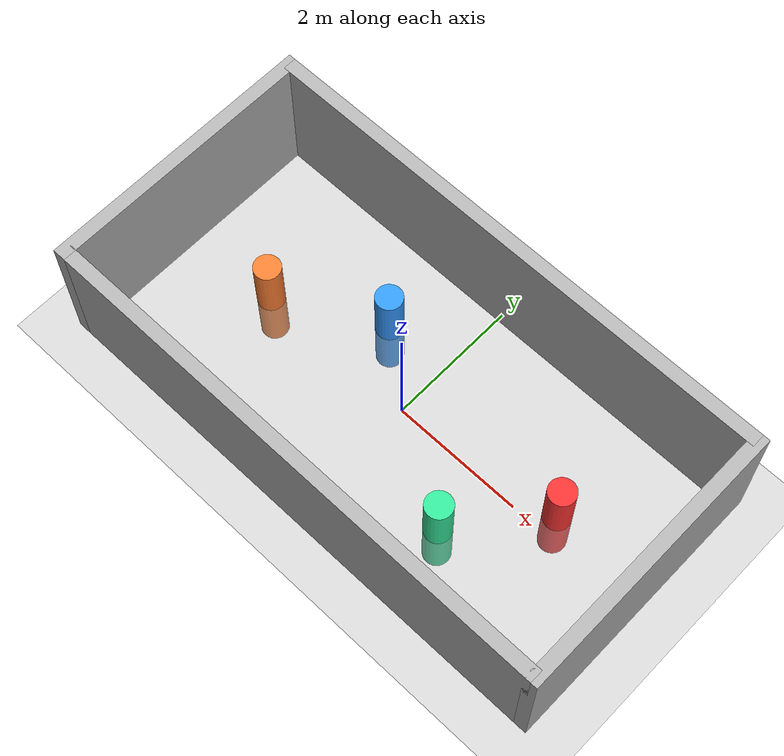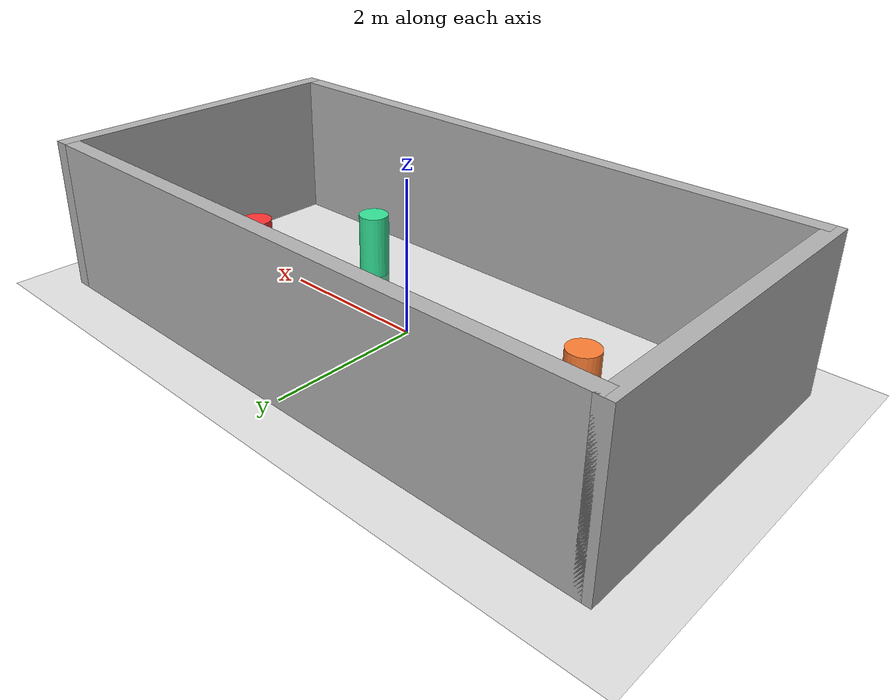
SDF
<?xml version="1.0" ?>
<sdf version="1.6">
  <world name="indoor_with_humans">
    <light name="sun" type="directional">
      <pose>0 0 10 0 0 0</pose>
      <diffuse>1 1 1 1</diffuse>
      <specular>0.2 0.2 0.2 1</specular>
      <direction>-0.5 0.1 -1</direction>
    </light>

    <model name="ground_plane">
      <static>true</static>
      <link name="link">
        <collision name="collision">
          <geometry>
            <plane>
              <normal>0 0 1</normal>
              <size>50 50</size>
            </plane>
          </geometry>
        </collision>
        <visual name="visual">
          <geometry>
            <plane>
              <normal>0 0 1</normal>
              <size>50 50</size>
            </plane>
          </geometry>
          <material>
            <ambient>0.6 0.6 0.6 1</ambient>
          </material>
        </visual>
      </link>
    </model>

    <physics type="ode">
      <max_step_size>0.001</max_step_size>
      <real_time_factor>1.0</real_time_factor>
      <real_time_update_rate>1000</real_time_update_rate>
    </physics>

    <!-- Simple corridor + room layout -->
    <model name="wall_1">
      <static>true</static>
      <link name="link">
        <pose>0 2 1 0 0 0</pose>
        <collision name="collision">
          <geometry>
            <box>
              <size>8 0.2 2</size>
            </box>
          </geometry>
        </collision>
        <visual name="visual">
          <geometry>
            <box>
              <size>8 0.2 2</size>
            </box>
          </geometry>
          <material>
            <ambient>0.7 0.7 0.7 1</ambient>
          </material>
        </visual>
      </link>
    </model>

    <model name="wall_2">
      <static>true</static>
      <link name="link">
        <pose>0 -2 1 0 0 0</pose>
        <collision name="collision">
          <geometry>
            <box>
              <size>8 0.2 2</size>
            </box>
          </geometry>
        </collision>
        <visual name="visual">
          <geometry>
            <box>
              <size>8 0.2 2</size>
            </box>
          </geometry>
          <material>
            <ambient>0.7 0.7 0.7 1</ambient>
          </material>
        </visual>
      </link>
    </model>

    <model name="wall_3">
      <static>true</static>
      <link name="link">
        <pose>4 0 1 0 0 0</pose>
        <collision name="collision">
          <geometry>
            <box>
              <size>0.2 4.2 2</size>
            </box>
          </geometry>
        </collision>
        <visual name="visual">
          <geometry>
            <box>
              <size>0.2 4.2 2</size>
            </box>
          </geometry>
          <material>
            <ambient>0.7 0.7 0.7 1</ambient>
          </material>
        </visual>
      </link>
    </model>

    <model name="wall_4">
      <static>true</static>
      <link name="link">
        <pose>-4 0 1 0 0 0</pose>
        <collision name="collision">
          <geometry>
            <box>
              <size>0.2 4.2 2</size>
            </box>
          </geometry>
        </collision>
        <visual name="visual">
          <geometry>
            <box>
              <size>0.2 4.2 2</size>
            </box>
          </geometry>
          <material>
            <ambient>0.7 0.7 0.7 1</ambient>
          </material>
        </visual>
      </link>
    </model>

    <!-- Static humans (cylinders) -->
    <model name="human_static_1">
      <static>true</static>
      <pose>-1.0 0.8 0 0 0 0</pose>
      <link name="link">
        <collision name="collision">
          <geometry>
            <cylinder>
              <radius>0.2</radius>
              <length>1.7</length>
            </cylinder>
          </geometry>
        </collision>
        <visual name="visual">
          <geometry>
            <cylinder>
              <radius>0.2</radius>
              <length>1.7</length>
            </cylinder>
          </geometry>
          <material>
            <ambient>0.2 0.6 1.0 1</ambient>
          </material>
        </visual>
      </link>
    </model>

    <model name="human_static_2">
      <static>true</static>
      <pose>1.5 -0.9 0 0 0 0</pose>
      <link name="link">
        <collision name="collision">
          <geometry>
            <cylinder>
              <radius>0.2</radius>
              <length>1.7</length>
            </cylinder>
          </geometry>
        </collision>
        <visual name="visual">
          <geometry>
            <cylinder>
              <radius>0.2</radius>
              <length>1.7</length>
            </cylinder>
          </geometry>
          <material>
            <ambient>0.2 0.9 0.6 1</ambient>
          </material>
        </visual>
      </link>
    </model>

    <!-- Moving humans (moved via ROS script) -->
    <model name="human_moving_1">
      <static>false</static>
      <pose>-2.5 0.0 0 0 0 0</pose>
      <link name="link">
        <inertial>
          <mass>60.0</mass>
          <inertia>
            <ixx>1</ixx>
            <iyy>1</iyy>
            <izz>1</izz>
          </inertia>
        </inertial>
        <collision name="collision">
          <geometry>
            <cylinder>
              <radius>0.2</radius>
              <length>1.7</length>
            </cylinder>
          </geometry>
        </collision>
        <visual name="visual">
          <geometry>
            <cylinder>
              <radius>0.2</radius>
              <length>1.7</length>
            </cylinder>
          </geometry>
          <material>
            <ambient>1.0 0.5 0.2 1</ambient>
          </material>
        </visual>
      </link>
    </model>

    <model name="human_moving_2">
      <static>false</static>
      <pose>2.5 0.3 0 0 0 0</pose>
      <link name="link">
        <inertial>
          <mass>60.0</mass>
          <inertia>
            <ixx>1</ixx>
            <iyy>1</iyy>
            <izz>1</izz>
          </inertia>
        </inertial>
        <collision name="collision">
          <geometry>
            <cylinder>
              <radius>0.2</radius>
              <length>1.7</length>
            </cylinder>
          </geometry>
        </collision>
        <visual name="visual">
          <geometry>
            <cylinder>
              <radius>0.2</radius>
              <length>1.7</length>
            </cylinder>
          </geometry>
          <material>
            <ambient>1.0 0.2 0.2 1</ambient>
          </material>
        </visual>
      </link>
    </model>
  </world>
</sdf>
